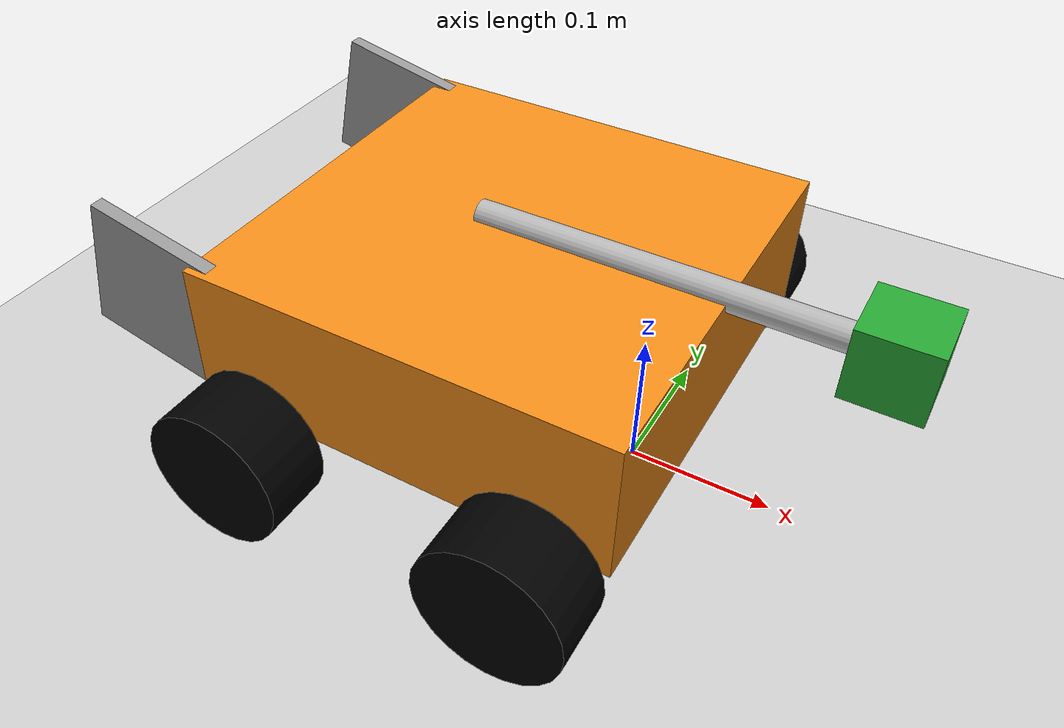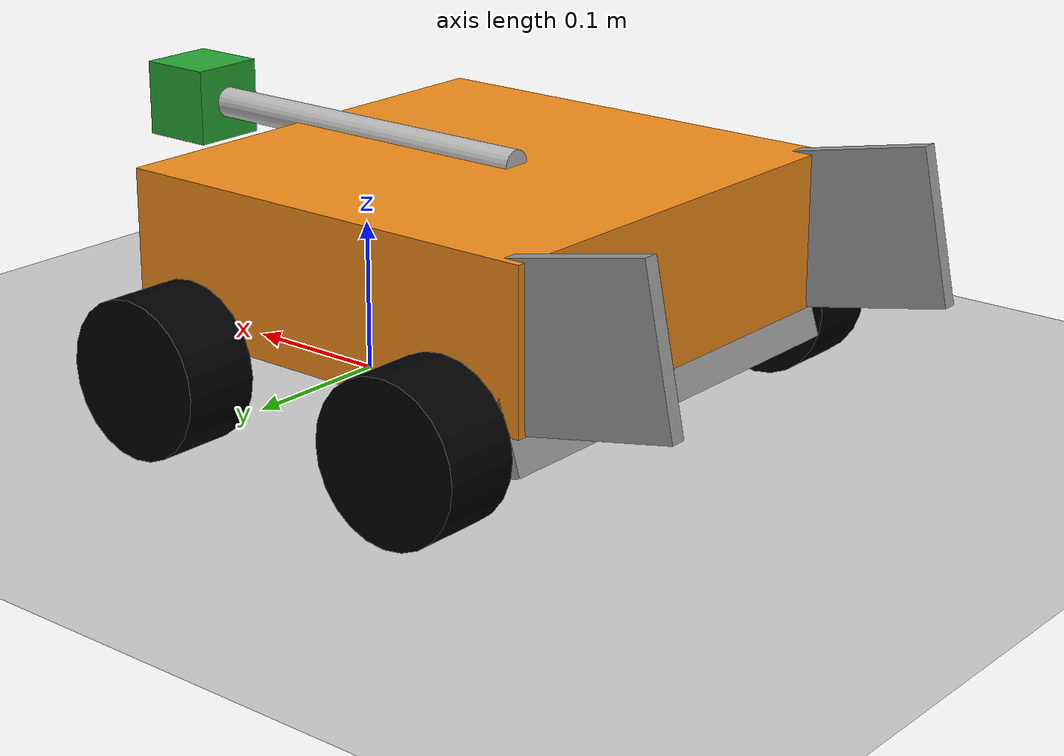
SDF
<sdf version="1.6">
 <world name="default">
  <model name="ground_plane">
   <static>1</static>
   <link name="link">
    <collision name="collision">
     <geometry><plane><normal>0 0 1</normal><size>100 100</size></plane></geometry>
     <surface><friction><ode><mu>100</mu><mu2>50</mu2></ode></friction></surface>
    </collision>
    <visual name="visual">
     <cast_shadows>0</cast_shadows>
     <geometry><plane><normal>0 0 1</normal><size>100 100</size></plane></geometry>
     <material>
      <script><uri>file://media/materials/scripts/gazebo.material</uri><name>Gazebo/Grey</name></script>
     </material>
    </visual>
   </link>
  </model>
  <model name="mybot_3">
   <link name="chassis">
    <inertial>
     <pose>-0.099839 0 0.054868 0 -0 0</pose>
     <mass>15.51</mass>
     <inertia><ixx>1.01091</ixx><ixy>0</ixy><ixz>0</ixz><iyy>2.01153</iyy><iyz>0</iyz><izz>0.200626</izz></inertia>
    </inertial>
    <sensor name="camera1" type="camera">
     <update_rate>30</update_rate>
     <camera name="chassis">
      <horizontal_fov>1.39626</horizontal_fov>
      <image><width>800</width><height>800</height><format>R8G8B8</format></image>
      <clip><near>0.02</near><far>300</far></clip>
     </camera>
     <plugin name="camera_controller" filename="libgazebo_ros_camera.so">
      <alwaysOn>true</alwaysOn>
      <updateRate>0.0</updateRate>
      <cameraName>mybot/camera1</cameraName>
      <imageTopicName>image_raw</imageTopicName>
      <cameraInfoTopicName>camera_info</cameraInfoTopicName>
      <frameName>camera</frameName>
      <hackBaseline>0.07</hackBaseline>
      <distortionK1>0.0</distortionK1>
      <distortionK2>0.0</distortionK2>
      <distortionK3>0.0</distortionK3>
      <distortionT1>0.0</distortionT1>
      <distortionT2>0.0</distortionT2>
      <robotNamespace>/mybot/</robotNamespace>
     </plugin>
     <pose>0.15 0 0.1 3.14159 1.57079 3.14159</pose>
    </sensor>
    <visual name="chassis_visual_visual">
     <pose>-0.1 0 0.05 0 -0 0</pose>
     <geometry><box><size>0.3 0.3 0.1</size></box></geometry>
     <material>
      <script><name>Gazebo/Orange</name><uri>file://media/materials/scripts/gazebo.material</uri></script>
      <ambient>1 0.509 0.047 1</ambient>
      <diffuse>1 0.509 0.047 1</diffuse>
      <specular>0.5 0.5 0.5 1</specular>
      <emissive>0.3 0.2 0.2 1</emissive>
      <shader type="vertex"><normal_map>__default__</normal_map></shader>
     </material>
    </visual>
    <visual name="chassis_fixed_joint_lump__camera_pole_visual_1">
     <pose>0 0 0.1 1.57075 0 1.57075</pose>
     <geometry><cylinder><length>0.25</length><radius>0.01</radius></cylinder></geometry>
     <material>
      <emissive>0 0 0 1</emissive>
      <shader type="vertex"><normal_map>__default__</normal_map></shader>
     </material>
    </visual>
    <visual name="chassis_fixed_joint_lump__camera_visual_2">
     <pose>0.15 0 0.1 3.14159 1.57079 3.14159</pose>
     <geometry><box><size>0.05 0.05 0.05</size></box></geometry>
     <material>
      <script><name>Gazebo/Green</name><uri>file://media/materials/scripts/gazebo.material</uri></script>
      <ambient>0 1 0 1</ambient>
      <diffuse>0 1 0 1</diffuse>
      <specular>0.1 0.1 0.1 1</specular>
      <emissive>0 0 0 1</emissive>
      <shader type="vertex"><normal_map>__default__</normal_map></shader>
     </material>
    </visual>
    <collision name="chassis_fixed_joint_lump__collision_collision">
     <pose>-0.1 0 0.05 0 -0 0</pose>
     <geometry><box><size>0.3 0.3 0.1</size></box></geometry>
     <surface>
      <friction>
       <ode><mu>1</mu><mu2>1</mu2><fdir1>0 0 0</fdir1><slip1>0</slip1><slip2>0</slip2></ode>
       <torsional>
        <coefficient>1</coefficient>
        <patch_radius>0</patch_radius>
        <surface_radius>0</surface_radius>
        <use_patch_radius>1</use_patch_radius>
        <ode><slip>0</slip></ode>
       </torsional>
      </friction>
      <bounce><restitution_coefficient>0</restitution_coefficient><threshold>1e+06</threshold></bounce>
      <contact>
       <collide_without_contact>0</collide_without_contact>
       <collide_without_contact_bitmask>1</collide_without_contact_bitmask>
       <collide_bitmask>1</collide_bitmask>
       <ode>
        <soft_cfm>0</soft_cfm>
        <soft_erp>0.2</soft_erp>
        <kp>1e+13</kp>
        <kd>1</kd>
        <max_vel>0.01</max_vel>
        <min_depth>0</min_depth>
       </ode>
       <bullet>
        <split_impulse>1</split_impulse>
        <split_impulse_penetration_threshold>-0.01</split_impulse_penetration_threshold>
        <soft_cfm>0</soft_cfm>
        <soft_erp>0.2</soft_erp>
        <kp>1e+13</kp>
        <kd>1</kd>
       </bullet>
      </contact>
     </surface>
    </collision>
    <collision name="chassis_fixed_joint_lump__camera_collision_2">
     <pose>0.15 0 0.1 3.14159 1.57079 3.14159</pose>
     <geometry><box><size>0.05 0.05 0.05</size></box></geometry>
     <surface>
      <friction>
       <ode><mu>1</mu><mu2>1</mu2><fdir1>0 0 0</fdir1><slip1>0</slip1><slip2>0</slip2></ode>
       <torsional>
        <coefficient>1</coefficient>
        <patch_radius>0</patch_radius>
        <surface_radius>0</surface_radius>
        <use_patch_radius>1</use_patch_radius>
        <ode><slip>0</slip></ode>
       </torsional>
      </friction>
      <bounce><restitution_coefficient>0</restitution_coefficient><threshold>1e+06</threshold></bounce>
      <contact>
       <collide_without_contact>0</collide_without_contact>
       <collide_without_contact_bitmask>1</collide_without_contact_bitmask>
       <collide_bitmask>1</collide_bitmask>
       <ode>
        <soft_cfm>0</soft_cfm>
        <soft_erp>0.2</soft_erp>
        <kp>1e+13</kp>
        <kd>1</kd>
        <max_vel>0.01</max_vel>
        <min_depth>0</min_depth>
       </ode>
       <bullet>
        <split_impulse>1</split_impulse>
        <split_impulse_penetration_threshold>-0.01</split_impulse_penetration_threshold>
        <soft_cfm>0</soft_cfm>
        <soft_erp>0.2</soft_erp>
        <kp>1e+13</kp>
        <kd>1</kd>
       </bullet>
      </contact>
     </surface>
    </collision>
    <collision name="chassis_fixed_joint_lump__collision_collision_1">
     <pose>0 0 0.1 3.14159 1.57079 3.14159</pose>
     <geometry><cylinder><radius>0.01</radius><length>0.25</length></cylinder></geometry>
     <surface>
      <friction>
       <ode><mu>1</mu><mu2>1</mu2><fdir1>0 0 0</fdir1><slip1>0</slip1><slip2>0</slip2></ode>
       <torsional>
        <coefficient>1</coefficient>
        <patch_radius>0</patch_radius>
        <surface_radius>0</surface_radius>
        <use_patch_radius>1</use_patch_radius>
        <ode><slip>0</slip></ode>
       </torsional>
      </friction>
      <bounce><restitution_coefficient>0</restitution_coefficient><threshold>1e+06</threshold></bounce>
      <contact>
       <collide_without_contact>0</collide_without_contact>
       <collide_without_contact_bitmask>1</collide_without_contact_bitmask>
       <collide_bitmask>1</collide_bitmask>
       <ode>
        <soft_cfm>0</soft_cfm>
        <soft_erp>0.2</soft_erp>
        <kp>1e+13</kp>
        <kd>1</kd>
        <max_vel>0.01</max_vel>
        <min_depth>0</min_depth>
       </ode>
       <bullet>
        <split_impulse>1</split_impulse>
        <split_impulse_penetration_threshold>-0.01</split_impulse_penetration_threshold>
        <soft_cfm>0</soft_cfm>
        <soft_erp>0.2</soft_erp>
        <kp>1e+13</kp>
        <kd>1</kd>
       </bullet>
      </contact>
     </surface>
    </collision>
   </link>
   <link name="left_back_wheel">
    <pose>-0.2 0.18 -0.01 0 -0 0</pose>
    <inertial>
     <pose>0 0 0 -0 1.5707 1.5707</pose>
     <mass>5</mass>
     <inertia><ixx>1</ixx><ixy>0</ixy><ixz>0</ixz><iyy>1</iyy><iyz>0</iyz><izz>1</izz></inertia>
    </inertial>
    <visual name="left_back_wheel_fixed_joint_lump__left_wheel_visual_visual">
     <pose>0 0 0 -3.12268 1.57079 -1.55198</pose>
     <geometry><cylinder><length>0.05</length><radius>0.05</radius></cylinder></geometry>
     <material>
      <emissive>0 0 0 1</emissive>
      <shader type="vertex"><normal_map>__default__</normal_map></shader>
      <ambient>0 0 0 1</ambient>
      <diffuse>0 0 0 1</diffuse>
      <specular>0 0 0 1</specular>
      <script>
       <name>ModelPreview_1::left_back_wheel::left_back_wheel_fixed_joint_lump__left_wheel_visual_visual_MATERIAL_</name>
       <uri>__default__</uri>
      </script>
     </material>
    </visual>
    <collision name="left_back_wheel_fixed_joint_lump__collision_collision">
     <pose>0 0 0 3.14159 1.57079 -1.57089</pose>
     <geometry><cylinder><radius>0.05</radius><length>0.05</length></cylinder></geometry>
     <surface>
      <friction>
       <ode><mu>0</mu><mu2>0</mu2><fdir1>0 0 0</fdir1><slip1>0</slip1><slip2>0</slip2></ode>
       <torsional>
        <coefficient>1</coefficient>
        <patch_radius>0</patch_radius>
        <surface_radius>0</surface_radius>
        <use_patch_radius>1</use_patch_radius>
        <ode><slip>0</slip></ode>
       </torsional>
      </friction>
      <bounce><restitution_coefficient>0</restitution_coefficient><threshold>1e+06</threshold></bounce>
      <contact>
       <collide_without_contact>0</collide_without_contact>
       <collide_without_contact_bitmask>1</collide_without_contact_bitmask>
       <collide_bitmask>1</collide_bitmask>
       <ode>
        <soft_cfm>0</soft_cfm>
        <soft_erp>0.2</soft_erp>
        <kp>1e+13</kp>
        <kd>1</kd>
        <max_vel>0.01</max_vel>
        <min_depth>0</min_depth>
       </ode>
       <bullet>
        <split_impulse>1</split_impulse>
        <split_impulse_penetration_threshold>-0.01</split_impulse_penetration_threshold>
        <soft_cfm>0</soft_cfm>
        <soft_erp>0.2</soft_erp>
        <kp>1e+13</kp>
        <kd>1</kd>
       </bullet>
      </contact>
     </surface>
    </collision>
   </link>
   <link name="left_wheel">
    <pose>0 0.18 -0.01 0 -0 0</pose>
    <inertial>
     <pose>0 0 0 -0 1.5707 1.5707</pose>
     <mass>5</mass>
     <inertia><ixx>1</ixx><ixy>0</ixy><ixz>0</ixz><iyy>1</iyy><iyz>0</iyz><izz>1</izz></inertia>
    </inertial>
    <visual name="left_wheel_visual_visual">
     <pose>0 0 0 -3.12268 1.57079 -1.55198</pose>
     <geometry><cylinder><length>0.05</length><radius>0.05</radius></cylinder></geometry>
     <material>
      <emissive>0 0 0 1</emissive>
      <shader type="vertex"><normal_map>__default__</normal_map></shader>
      <ambient>0 0 0 1</ambient>
      <diffuse>0 0 0 1</diffuse>
      <specular>0 0 0 1</specular>
      <script>
       <name>ModelPreview_4::left_wheel::left_wheel_visual_visual_MATERIAL_</name>
       <uri>__default__</uri>
      </script>
     </material>
    </visual>
    <collision name="left_wheel_fixed_joint_lump__collision_collision">
     <pose>0 0 0 3.14159 1.57079 -1.57089</pose>
     <geometry><cylinder><radius>0.05</radius><length>0.05</length></cylinder></geometry>
     <surface>
      <friction>
       <ode><mu>100</mu><mu2>100</mu2><fdir1>0 0 0</fdir1><slip1>0</slip1><slip2>0</slip2></ode>
       <torsional>
        <coefficient>1</coefficient>
        <patch_radius>0</patch_radius>
        <surface_radius>0</surface_radius>
        <use_patch_radius>1</use_patch_radius>
        <ode><slip>0</slip></ode>
       </torsional>
      </friction>
      <bounce><restitution_coefficient>0</restitution_coefficient><threshold>1e+06</threshold></bounce>
      <contact>
       <collide_without_contact>0</collide_without_contact>
       <collide_without_contact_bitmask>1</collide_without_contact_bitmask>
       <collide_bitmask>1</collide_bitmask>
       <ode>
        <soft_cfm>0</soft_cfm>
        <soft_erp>0.2</soft_erp>
        <kp>1e+13</kp>
        <kd>1</kd>
        <max_vel>0.01</max_vel>
        <min_depth>0</min_depth>
       </ode>
       <bullet>
        <split_impulse>1</split_impulse>
        <split_impulse_penetration_threshold>-0.01</split_impulse_penetration_threshold>
        <soft_cfm>0</soft_cfm>
        <soft_erp>0.2</soft_erp>
        <kp>1e+13</kp>
        <kd>1</kd>
       </bullet>
      </contact>
     </surface>
    </collision>
   </link>
   <link name="link_0">
    <pose>-0.29 0.14 0.06 0 0.2 0</pose>
    <inertial>
     <mass>0.1</mass>
     <inertia>
      <ixx>0.166667</ixx>
      <ixy>0</ixy>
      <ixz>0</ixz>
      <iyy>0.166667</iyy>
      <iyz>0</iyz>
      <izz>0.166667</izz>
     </inertia>
    </inertial>
    <visual name="visual">
     <geometry><box><size>0.1 0.01 0.1</size></box></geometry>
     <material>
      <lighting>1</lighting>
      <script><uri>file://media/materials/scripts/gazebo.material</uri><name>Gazebo/Grey</name></script>
      <ambient>0.3 0.3 0.3 1</ambient>
      <diffuse>0.7 0.7 0.7 1</diffuse>
      <specular>0.01 0.01 0.01 1</specular>
      <emissive>0 0 0 1</emissive>
      <shader type="vertex"><normal_map>__default__</normal_map></shader>
     </material>
    </visual>
    <collision name="collision">
     <geometry><box><size>0.1 0.01 0.1</size></box></geometry>
     <surface>
      <friction>
       <ode><mu>1</mu><mu2>1</mu2><fdir1>0 0 0</fdir1><slip1>0</slip1><slip2>0</slip2></ode>
       <torsional>
        <coefficient>1</coefficient>
        <patch_radius>0</patch_radius>
        <surface_radius>0</surface_radius>
        <use_patch_radius>1</use_patch_radius>
        <ode><slip>0</slip></ode>
       </torsional>
      </friction>
      <bounce><restitution_coefficient>0</restitution_coefficient><threshold>1e+06</threshold></bounce>
      <contact>
       <collide_without_contact>0</collide_without_contact>
       <collide_without_contact_bitmask>1</collide_without_contact_bitmask>
       <collide_bitmask>1</collide_bitmask>
       <ode>
        <soft_cfm>0</soft_cfm>
        <soft_erp>0.2</soft_erp>
        <kp>1e+13</kp>
        <kd>1</kd>
        <max_vel>0.01</max_vel>
        <min_depth>0</min_depth>
       </ode>
       <bullet>
        <split_impulse>1</split_impulse>
        <split_impulse_penetration_threshold>-0.01</split_impulse_penetration_threshold>
        <soft_cfm>0</soft_cfm>
        <soft_erp>0.2</soft_erp>
        <kp>1e+13</kp>
        <kd>1</kd>
       </bullet>
      </contact>
     </surface>
    </collision>
   </link>
   <link name="link_1">
    <pose>-0.29 -0.14 0.06 0 0.2 0</pose>
    <inertial>
     <mass>0.1</mass>
     <inertia>
      <ixx>0.166667</ixx>
      <ixy>0</ixy>
      <ixz>0</ixz>
      <iyy>0.166667</iyy>
      <iyz>0</iyz>
      <izz>0.166667</izz>
     </inertia>
    </inertial>
    <visual name="visual">
     <geometry><box><size>0.1 0.01 0.1</size></box></geometry>
     <material>
      <lighting>1</lighting>
      <script><uri>file://media/materials/scripts/gazebo.material</uri><name>Gazebo/Grey</name></script>
      <ambient>0.3 0.3 0.3 1</ambient>
      <diffuse>0.7 0.7 0.7 1</diffuse>
      <specular>0.01 0.01 0.01 1</specular>
      <emissive>0 0 0 1</emissive>
      <shader type="vertex"><normal_map>__default__</normal_map></shader>
     </material>
    </visual>
    <collision name="collision">
     <geometry><box><size>0.1 0.01 0.1</size></box></geometry>
     <surface>
      <friction>
       <ode><mu>1</mu><mu2>1</mu2><fdir1>0 0 0</fdir1><slip1>0</slip1><slip2>0</slip2></ode>
       <torsional>
        <coefficient>1</coefficient>
        <patch_radius>0</patch_radius>
        <surface_radius>0</surface_radius>
        <use_patch_radius>1</use_patch_radius>
        <ode><slip>0</slip></ode>
       </torsional>
      </friction>
      <bounce><restitution_coefficient>0</restitution_coefficient><threshold>1e+06</threshold></bounce>
      <contact>
       <collide_without_contact>0</collide_without_contact>
       <collide_without_contact_bitmask>1</collide_without_contact_bitmask>
       <collide_bitmask>1</collide_bitmask>
       <ode>
        <soft_cfm>0</soft_cfm>
        <soft_erp>0.2</soft_erp>
        <kp>1e+13</kp>
        <kd>1</kd>
        <max_vel>0.01</max_vel>
        <min_depth>0</min_depth>
       </ode>
       <bullet>
        <split_impulse>1</split_impulse>
        <split_impulse_penetration_threshold>-0.01</split_impulse_penetration_threshold>
        <soft_cfm>0</soft_cfm>
        <soft_erp>0.2</soft_erp>
        <kp>1e+13</kp>
        <kd>1</kd>
       </bullet>
      </contact>
     </surface>
    </collision>
   </link>
   <link name="link_2">
    <pose>-0.238655 0 -0 0 0.3 0</pose>
    <inertial>
     <mass>0.1</mass>
     <inertia>
      <ixx>0.166667</ixx>
      <ixy>0</ixy>
      <ixz>0</ixz>
      <iyy>0.166667</iyy>
      <iyz>0</iyz>
      <izz>0.166667</izz>
     </inertia>
    </inertial>
    <visual name="visual">
     <geometry><box><size>0.01 0.3 0.05</size></box></geometry>
     <material>
      <lighting>1</lighting>
      <script><uri>file://media/materials/scripts/gazebo.material</uri><name>Gazebo/Grey</name></script>
      <ambient>0.3 0.3 0.3 1</ambient>
      <diffuse>0.7 0.7 0.7 1</diffuse>
      <specular>0.01 0.01 0.01 1</specular>
      <emissive>0 0 0 1</emissive>
      <shader type="vertex"><normal_map>__default__</normal_map></shader>
     </material>
    </visual>
    <collision name="collision">
     <geometry><box><size>0.01 0.3 0.05</size></box></geometry>
     <surface>
      <friction>
       <ode><mu>1</mu><mu2>1</mu2><fdir1>0 0 0</fdir1><slip1>0</slip1><slip2>0</slip2></ode>
       <torsional>
        <coefficient>1</coefficient>
        <patch_radius>0</patch_radius>
        <surface_radius>0</surface_radius>
        <use_patch_radius>1</use_patch_radius>
        <ode><slip>0</slip></ode>
       </torsional>
      </friction>
      <bounce><restitution_coefficient>0</restitution_coefficient><threshold>1e+06</threshold></bounce>
      <contact>
       <collide_without_contact>0</collide_without_contact>
       <collide_without_contact_bitmask>1</collide_without_contact_bitmask>
       <collide_bitmask>1</collide_bitmask>
       <ode>
        <soft_cfm>0</soft_cfm>
        <soft_erp>0.2</soft_erp>
        <kp>1e+13</kp>
        <kd>1</kd>
        <max_vel>0.01</max_vel>
        <min_depth>0</min_depth>
       </ode>
       <bullet>
        <split_impulse>1</split_impulse>
        <split_impulse_penetration_threshold>-0.01</split_impulse_penetration_threshold>
        <soft_cfm>0</soft_cfm>
        <soft_erp>0.2</soft_erp>
        <kp>1e+13</kp>
        <kd>1</kd>
       </bullet>
      </contact>
     </surface>
    </collision>
   </link>
   <link name="right_back_wheel">
    <pose>-0.2 -0.18 -0.01 0 -0 0</pose>
    <inertial>
     <pose>0 0 0 -0 1.5707 1.5707</pose>
     <mass>5</mass>
     <inertia><ixx>1</ixx><ixy>0</ixy><ixz>0</ixz><iyy>1</iyy><iyz>0</iyz><izz>1</izz></inertia>
    </inertial>
    <visual name="right_back_wheel_fixed_joint_lump__right_wheel_visual_visual">
     <pose>0 0 0 -3.12268 1.57079 -1.55198</pose>
     <geometry><cylinder><length>0.05</length><radius>0.05</radius></cylinder></geometry>
     <material>
      <shader type="vertex"><normal_map>__default__</normal_map></shader>
      <ambient>0 0 0 1</ambient>
      <diffuse>0 0 0 1</diffuse>
      <specular>0 0 0 1</specular>
      <emissive>0 0 0 1</emissive>
      <script>
       <name>ModelPreview_1::right_back_wheel::right_back_wheel_fixed_joint_lump__right_wheel_visual_visual_MATERIAL_</name>
       <uri>__default__</uri>
      </script>
     </material>
    </visual>
    <collision name="right_back_wheel_fixed_joint_lump__collision_collision">
     <pose>0 0 0 3.14159 1.57079 -1.57089</pose>
     <geometry><cylinder><radius>0.05</radius><length>0.05</length></cylinder></geometry>
     <surface>
      <friction>
       <ode><mu>0</mu><mu2>0</mu2><fdir1>0 0 0</fdir1><slip1>0</slip1><slip2>0</slip2></ode>
       <torsional>
        <coefficient>1</coefficient>
        <patch_radius>0</patch_radius>
        <surface_radius>0</surface_radius>
        <use_patch_radius>1</use_patch_radius>
        <ode><slip>0</slip></ode>
       </torsional>
      </friction>
      <bounce><restitution_coefficient>0</restitution_coefficient><threshold>1e+06</threshold></bounce>
      <contact>
       <collide_without_contact>0</collide_without_contact>
       <collide_without_contact_bitmask>1</collide_without_contact_bitmask>
       <collide_bitmask>1</collide_bitmask>
       <ode>
        <soft_cfm>0</soft_cfm>
        <soft_erp>0.2</soft_erp>
        <kp>1e+13</kp>
        <kd>1</kd>
        <max_vel>0.01</max_vel>
        <min_depth>0</min_depth>
       </ode>
       <bullet>
        <split_impulse>1</split_impulse>
        <split_impulse_penetration_threshold>-0.01</split_impulse_penetration_threshold>
        <soft_cfm>0</soft_cfm>
        <soft_erp>0.2</soft_erp>
        <kp>1e+13</kp>
        <kd>1</kd>
       </bullet>
      </contact>
     </surface>
    </collision>
   </link>
   <link name="right_wheel">
    <pose>0 -0.18 -0.01 0 -0 0</pose>
    <inertial>
     <pose>0 0 0 -0 1.5707 1.5707</pose>
     <mass>5</mass>
     <inertia><ixx>1</ixx><ixy>0</ixy><ixz>0</ixz><iyy>1</iyy><iyz>0</iyz><izz>1</izz></inertia>
    </inertial>
    <visual name="right_wheel_visual_visual">
     <pose>0 0 0 -3.12268 1.57079 -1.55198</pose>
     <geometry><cylinder><length>0.05</length><radius>0.05</radius></cylinder></geometry>
     <material>
      <shader type="vertex"><normal_map>__default__</normal_map></shader>
      <ambient>0 0 0 1</ambient>
      <diffuse>0 0 0 1</diffuse>
      <specular>0 0 0 1</specular>
      <emissive>0 0 0 1</emissive>
      <script>
       <name>ModelPreview_4::right_wheel::right_wheel_visual_visual_MATERIAL_</name>
       <uri>__default__</uri>
      </script>
     </material>
    </visual>
    <collision name="right_wheel_fixed_joint_lump__collision_collision">
     <pose>0 0 0 3.14159 1.57079 -1.57089</pose>
     <geometry><cylinder><radius>0.05</radius><length>0.05</length></cylinder></geometry>
     <surface>
      <friction>
       <ode><mu>100</mu><mu2>100</mu2><fdir1>0 0 0</fdir1><slip1>0</slip1><slip2>0</slip2></ode>
       <torsional>
        <coefficient>1</coefficient>
        <patch_radius>0</patch_radius>
        <surface_radius>0</surface_radius>
        <use_patch_radius>1</use_patch_radius>
        <ode><slip>0</slip></ode>
       </torsional>
      </friction>
      <bounce><restitution_coefficient>0</restitution_coefficient><threshold>1e+06</threshold></bounce>
      <contact>
       <collide_without_contact>0</collide_without_contact>
       <collide_without_contact_bitmask>1</collide_without_contact_bitmask>
       <collide_bitmask>1</collide_bitmask>
       <ode>
        <soft_cfm>0</soft_cfm>
        <soft_erp>0.2</soft_erp>
        <kp>1e+13</kp>
        <kd>1</kd>
        <max_vel>0.01</max_vel>
        <min_depth>0</min_depth>
       </ode>
       <bullet>
        <split_impulse>1</split_impulse>
        <split_impulse_penetration_threshold>-0.01</split_impulse_penetration_threshold>
        <soft_cfm>0</soft_cfm>
        <soft_erp>0.2</soft_erp>
        <kp>1e+13</kp>
        <kd>1</kd>
       </bullet>
      </contact>
     </surface>
    </collision>
   </link>
   <joint name="chassis_JOINT_0" type="fixed">
    <parent>chassis</parent>
    <child>link_0</child>
    <physics>
     <ode><limit><cfm>0</cfm><erp>0.2</erp></limit><suspension><cfm>0</cfm><erp>0.2</erp></suspension></ode>
    </physics>
   </joint>
   <joint name="chassis_JOINT_1" type="fixed">
    <parent>chassis</parent>
    <child>link_1</child>
    <physics>
     <ode><limit><cfm>0</cfm><erp>0.2</erp></limit><suspension><cfm>0</cfm><erp>0.2</erp></suspension></ode>
    </physics>
   </joint>
   <joint name="chassis_JOINT_2" type="fixed">
    <parent>chassis</parent>
    <child>link_2</child>
    <physics>
     <ode><limit><cfm>0</cfm><erp>0.2</erp></limit><suspension><cfm>0</cfm><erp>0.2</erp></suspension></ode>
    </physics>
   </joint>
   <joint name="left_back_wheel_hinge" type="revolute">
    <parent>chassis</parent>
    <child>left_back_wheel</child>
    <axis>
     <xyz>0 1 0</xyz>
     <use_parent_model_frame>1</use_parent_model_frame>
     <limit><lower>-1e+16</lower><upper>1e+16</upper><effort>-1</effort><velocity>-1</velocity></limit>
     <dynamics>
      <spring_reference>0</spring_reference>
      <spring_stiffness>0</spring_stiffness>
      <damping>0</damping>
      <friction>0</friction>
     </dynamics>
    </axis>
    <physics>
     <ode><limit><cfm>0</cfm><erp>0.2</erp></limit><suspension><cfm>0</cfm><erp>0.2</erp></suspension></ode>
    </physics>
   </joint>
   <joint name="left_wheel_hinge" type="revolute">
    <parent>chassis</parent>
    <child>left_wheel</child>
    <axis>
     <xyz>0 1 0</xyz>
     <use_parent_model_frame>1</use_parent_model_frame>
     <limit><lower>-1e+16</lower><upper>1e+16</upper><effort>-1</effort><velocity>-1</velocity></limit>
     <dynamics>
      <spring_reference>0</spring_reference>
      <spring_stiffness>0</spring_stiffness>
      <damping>0</damping>
      <friction>0</friction>
     </dynamics>
    </axis>
    <physics>
     <ode><limit><cfm>0</cfm><erp>0.2</erp></limit><suspension><cfm>0</cfm><erp>0.2</erp></suspension></ode>
    </physics>
   </joint>
   <joint name="right_back_wheel_hinge" type="revolute">
    <parent>chassis</parent>
    <child>right_back_wheel</child>
    <axis>
     <xyz>0 1 0</xyz>
     <use_parent_model_frame>1</use_parent_model_frame>
     <limit><lower>-1e+16</lower><upper>1e+16</upper><effort>-1</effort><velocity>-1</velocity></limit>
     <dynamics>
      <spring_reference>0</spring_reference>
      <spring_stiffness>0</spring_stiffness>
      <damping>0</damping>
      <friction>0</friction>
     </dynamics>
    </axis>
    <physics>
     <ode><limit><cfm>0</cfm><erp>0.2</erp></limit><suspension><cfm>0</cfm><erp>0.2</erp></suspension></ode>
    </physics>
   </joint>
   <joint name="right_wheel_hinge" type="revolute">
    <parent>chassis</parent>
    <child>right_wheel</child>
    <axis>
     <xyz>0 1 0</xyz>
     <use_parent_model_frame>1</use_parent_model_frame>
     <limit><lower>-1e+16</lower><upper>1e+16</upper><effort>-1</effort><velocity>-1</velocity></limit>
     <dynamics>
      <spring_reference>0</spring_reference>
      <spring_stiffness>0</spring_stiffness>
      <damping>0</damping>
      <friction>0</friction>
     </dynamics>
    </axis>
    <physics>
     <ode><limit><cfm>0</cfm><erp>0.2</erp></limit><suspension><cfm>0</cfm><erp>0.2</erp></suspension></ode>
    </physics>
   </joint>
   <static>0</static>
   <plugin name="differential_drive_controller" filename="libgazebo_ros_diff_drive.so">
    <legacyMode>false</legacyMode>
    <alwaysOn>true</alwaysOn>
    <updateRate>20</updateRate>
    <leftJoint>left_wheel_hinge</leftJoint>
    <rightJoint>right_wheel_hinge</rightJoint>
    <wheelDiameter>0.1</wheelDiameter>
    <torque>20</torque>
    <commandTopic>cmd_vel</commandTopic>
    <odometryTopic>odom</odometryTopic>
    <odometryFrame>odom</odometryFrame>
    <robotBaseFrame>chassis</robotBaseFrame>
    <robotNamespace>/mybot/</robotNamespace>
   </plugin>
   <plugin name="gazebo_ros_control" filename="libgazebo_ros_control.so">
    <robotNamespace>/mybot</robotNamespace>
    <robotSimType>gazebo_ros_control/DefaultRobotHWSim</robotSimType>
    <legacyModeNS>true</legacyModeNS>
   </plugin>
   <pose>-9.6e-05 -0.000138 0.06001 -2e-06 -3e-06 -0.000266</pose>
  </model>
 </world>
</sdf>
